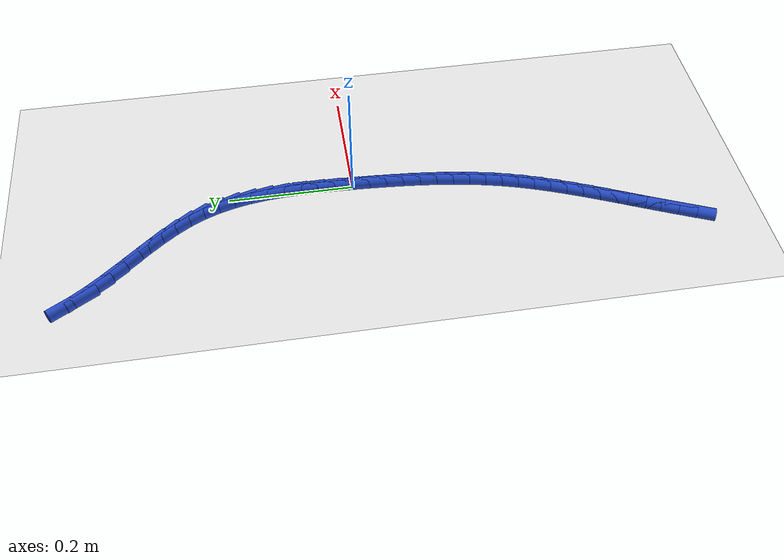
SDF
<sdf version="1.6">
 <world name="default">
  <model name="ground_plane">
   <static>1</static>
   <link name="link">
    <collision name="collision">
     <geometry><plane><normal>0 0 1</normal><size>100 100</size></plane></geometry>
     <surface><friction><ode><mu>100</mu><mu2>50</mu2></ode></friction></surface>
    </collision>
    <visual name="visual">
     <cast_shadows>0</cast_shadows>
     <geometry><plane><normal>0 0 1</normal><size>100 100</size></plane></geometry>
     <material>
      <script><uri>file://media/materials/scripts/gazebo.material</uri><name>Gazebo/WhiteGlow</name></script>
     </material>
    </visual>
   </link>
  </model>
  <model name="line">
   <link name="link_0">
    <pose>1.734723475976807e-18 -3.469446951953614e-17 0.01 0 1.57 1.534499082581251</pose>
    <collision name="collision">
     <geometry><cylinder><radius>0.01</radius><length>0.08</length></cylinder></geometry>
    </collision>
    <visual name="visual">
     <material>
      <script><name>Gazebo/Blue</name><uri>file://media/materials/scripts/gazebo.material</uri></script>
     </material>
     <geometry><cylinder><radius>0.01</radius><length>0.08</length></cylinder></geometry>
    </visual>
   </link>
   <link name="link_1">
    <pose>0.0010244381826505077 0.028211184337771505 0.01 0 1.57 1.5508360316246745</pose>
    <collision name="collision">
     <geometry><cylinder><radius>0.01</radius><length>0.08</length></cylinder></geometry>
    </collision>
    <visual name="visual">
     <material>
      <script><name>Gazebo/Blue</name><uri>file://media/materials/scripts/gazebo.material</uri></script>
     </material>
     <geometry><cylinder><radius>0.01</radius><length>0.08</length></cylinder></geometry>
    </visual>
   </link>
   <link name="link_2">
    <pose>0.0015889900832004194 0.05649117312218792 0.01 0 1.57 -1.5654724552780257</pose>
    <collision name="collision">
     <geometry><cylinder><radius>0.01</radius><length>0.08</length></cylinder></geometry>
    </collision>
    <visual name="visual">
     <material>
      <script><name>Gazebo/Blue</name><uri>file://media/materials/scripts/gazebo.material</uri></script>
     </material>
     <geometry><cylinder><radius>0.01</radius><length>0.08</length></cylinder></geometry>
    </visual>
   </link>
   <link name="link_3">
    <pose>0.0014389059966526364 0.08468168600264829 0.01 0 1.57 -1.530754771913588</pose>
    <collision name="collision">
     <geometry><cylinder><radius>0.01</radius><length>0.08</length></cylinder></geometry>
    </collision>
    <visual name="visual">
     <material>
      <script><name>Gazebo/Blue</name><uri>file://media/materials/scripts/gazebo.material</uri></script>
     </material>
     <geometry><cylinder><radius>0.01</radius><length>0.08</length></cylinder></geometry>
    </visual>
   </link>
   <link name="link_4">
    <pose>0.0003194362180100542 0.11262444262855158 0.01 0 1.57 -1.4858925671162506</pose>
    <collision name="collision">
     <geometry><cylinder><radius>0.01</radius><length>0.08</length></cylinder></geometry>
    </collision>
    <visual name="visual">
     <material>
      <script><name>Gazebo/Blue</name><uri>file://media/materials/scripts/gazebo.material</uri></script>
     </material>
     <geometry><cylinder><radius>0.01</radius><length>0.08</length></cylinder></geometry>
    </visual>
   </link>
   <link name="link_5">
    <pose>-0.00202416895772443 0.14016116264929682 0.01 0 1.57 -1.4300152551584602</pose>
    <collision name="collision">
     <geometry><cylinder><radius>0.01</radius><length>0.08</length></cylinder></geometry>
    </collision>
    <visual name="visual">
     <material>
      <script><name>Gazebo/Blue</name><uri>file://media/materials/scripts/gazebo.material</uri></script>
     </material>
     <geometry><cylinder><radius>0.01</radius><length>0.08</length></cylinder></geometry>
    </visual>
   </link>
   <link name="link_6">
    <pose>-0.005846659235547922 0.167133565714283 0.01 0 1.57 -1.3622114532721696</pose>
    <collision name="collision">
     <geometry><cylinder><radius>0.01</radius><length>0.08</length></cylinder></geometry>
    </collision>
    <visual name="visual">
     <material>
      <script><name>Gazebo/Blue</name><uri>file://media/materials/scripts/gazebo.material</uri></script>
     </material>
     <geometry><cylinder><radius>0.01</radius><length>0.08</length></cylinder></geometry>
    </visual>
   </link>
   <link name="link_7">
    <pose>-0.01140278432045752 0.19338337147290913 0.01 0 1.57 -1.2817341484935918</pose>
    <collision name="collision">
     <geometry><cylinder><radius>0.01</radius><length>0.08</length></cylinder></geometry>
    </collision>
    <visual name="visual">
     <material>
      <script><name>Gazebo/Blue</name><uri>file://media/materials/scripts/gazebo.material</uri></script>
     </material>
     <geometry><cylinder><radius>0.01</radius><length>0.08</length></cylinder></geometry>
    </visual>
   </link>
   <link name="link_8">
    <pose>-0.01894729391745033 0.2187522995745742 0.01 0 1.57 -1.1883166431062484</pose>
    <collision name="collision">
     <geometry><cylinder><radius>0.01</radius><length>0.08</length></cylinder></geometry>
    </collision>
    <visual name="visual">
     <material>
      <script><name>Gazebo/Blue</name><uri>file://media/materials/scripts/gazebo.material</uri></script>
     </material>
     <geometry><cylinder><radius>0.01</radius><length>0.08</length></cylinder></geometry>
    </visual>
   </link>
   <link name="link_9">
    <pose>-0.02873493773152347 0.24308206966867724 0.01 0 1.57 -1.0850132831528254</pose>
    <collision name="collision">
     <geometry><cylinder><radius>0.01</radius><length>0.08</length></cylinder></geometry>
    </collision>
    <visual name="visual">
     <material>
      <script><name>Gazebo/Blue</name><uri>file://media/materials/scripts/gazebo.material</uri></script>
     </material>
     <geometry><cylinder><radius>0.01</radius><length>0.08</length></cylinder></geometry>
    </visual>
   </link>
   <link name="link_10">
    <pose>-0.04096515103989245 0.26624607289294405 0.01 0 1.57 -0.9937251131377034</pose>
    <collision name="collision">
     <geometry><cylinder><radius>0.01</radius><length>0.08</length></cylinder></geometry>
    </collision>
    <visual name="visual">
     <material>
      <script><name>Gazebo/Blue</name><uri>file://media/materials/scripts/gazebo.material</uri></script>
     </material>
     <geometry><cylinder><radius>0.01</radius><length>0.08</length></cylinder></geometry>
    </visual>
   </link>
   <link name="link_11">
    <pose>-0.05537552134493945 0.2883821414540246 0.01 0 1.57 -0.9253450676091585</pose>
    <collision name="collision">
     <geometry><cylinder><radius>0.01</radius><length>0.08</length></cylinder></geometry>
    </collision>
    <visual name="visual">
     <material>
      <script><name>Gazebo/Blue</name><uri>file://media/materials/scripts/gazebo.material</uri></script>
     </material>
     <geometry><cylinder><radius>0.01</radius><length>0.08</length></cylinder></geometry>
    </visual>
   </link>
   <link name="link_12">
    <pose>-0.07147389048696376 0.3097596534742844 0.01 0 1.57 -0.8793216079523238</pose>
    <collision name="collision">
     <geometry><cylinder><radius>0.01</radius><length>0.08</length></cylinder></geometry>
    </collision>
    <visual name="visual">
     <material>
      <script><name>Gazebo/Blue</name><uri>file://media/materials/scripts/gazebo.material</uri></script>
     </material>
     <geometry><cylinder><radius>0.01</radius><length>0.08</length></cylinder></geometry>
    </visual>
   </link>
   <link name="link_13">
    <pose>-0.08876642932128517 0.3306489438351731 0.01 0 1.57 -0.8545641053096079</pose>
    <collision name="collision">
     <geometry><cylinder><radius>0.01</radius><length>0.08</length></cylinder></geometry>
    </collision>
    <visual name="visual">
     <material>
      <script><name>Gazebo/Blue</name><uri>file://media/materials/scripts/gazebo.material</uri></script>
     </material>
     <geometry><cylinder><radius>0.01</radius><length>0.08</length></cylinder></geometry>
    </visual>
   </link>
   <link name="link_14">
    <pose>-0.10675930870322364 0.35132034741814083 0.01 0 1.57 -0.8501648669630004</pose>
    <collision name="collision">
     <geometry><cylinder><radius>0.01</radius><length>0.08</length></cylinder></geometry>
    </collision>
    <visual name="visual">
     <material>
      <script><name>Gazebo/Blue</name><uri>file://media/materials/scripts/gazebo.material</uri></script>
     </material>
     <geometry><cylinder><radius>0.01</radius><length>0.08</length></cylinder></geometry>
    </visual>
   </link>
   <link name="link_15">
    <pose>-0.12495869948809904 0.37204419910463715 0.01 0 1.57 -0.865683779056549</pose>
    <collision name="collision">
     <geometry><cylinder><radius>0.01</radius><length>0.08</length></cylinder></geometry>
    </collision>
    <visual name="visual">
     <material>
      <script><name>Gazebo/Blue</name><uri>file://media/materials/scripts/gazebo.material</uri></script>
     </material>
     <geometry><cylinder><radius>0.01</radius><length>0.08</length></cylinder></geometry>
    </visual>
   </link>
   <link name="link_16">
    <pose>-0.14287077253123137 0.39309083377611204 0.01 0 1.57 -0.9011728520162907</pose>
    <collision name="collision">
     <geometry><cylinder><radius>0.01</radius><length>0.08</length></cylinder></geometry>
    </collision>
    <visual name="visual">
     <material>
      <script><name>Gazebo/Blue</name><uri>file://media/materials/scripts/gazebo.material</uri></script>
     </material>
     <geometry><cylinder><radius>0.01</radius><length>0.08</length></cylinder></geometry>
    </visual>
   </link>
   <link name="link_17">
    <pose>-0.16000169868794042 0.4147305863140152 0.01 0 1.57 -0.9569840891715519</pose>
    <collision name="collision">
     <geometry><cylinder><radius>0.01</radius><length>0.08</length></cylinder></geometry>
    </collision>
    <visual name="visual">
     <material>
      <script><name>Gazebo/Blue</name><uri>file://media/materials/scripts/gazebo.material</uri></script>
     </material>
     <geometry><cylinder><radius>0.01</radius><length>0.08</length></cylinder></geometry>
    </visual>
   </link>
   <link name="link_18">
    <pose>-0.17585764881354612 0.4372337915997964 0.01 0 1.57 -1.033338891163884</pose>
    <collision name="collision">
     <geometry><cylinder><radius>0.01</radius><length>0.08</length></cylinder></geometry>
    </collision>
    <visual name="visual">
     <material>
      <script><name>Gazebo/Blue</name><uri>file://media/materials/scripts/gazebo.material</uri></script>
     </material>
     <geometry><cylinder><radius>0.01</radius><length>0.08</length></cylinder></geometry>
    </visual>
   </link>
   <link name="link_230">
    <pose>-0.14095181906201712 -0.521905841253325 0.01 0 1.57 1.1659996630845366</pose>
    <collision name="collision">
     <geometry><cylinder><radius>0.01</radius><length>0.08</length></cylinder></geometry>
    </collision>
    <visual name="visual">
     <material>
      <script><name>Gazebo/Blue</name><uri>file://media/materials/scripts/gazebo.material</uri></script>
     </material>
     <geometry><cylinder><radius>0.01</radius><length>0.08</length></cylinder></geometry>
    </visual>
   </link>
   <link name="link_231">
    <pose>-0.12963605314643767 -0.4954954492083513 0.01 0 1.57 1.1607775316867712</pose>
    <collision name="collision">
     <geometry><cylinder><radius>0.01</radius><length>0.08</length></cylinder></geometry>
    </collision>
    <visual name="visual">
     <material>
      <script><name>Gazebo/Blue</name><uri>file://media/materials/scripts/gazebo.material</uri></script>
     </material>
     <geometry><cylinder><radius>0.01</radius><length>0.08</length></cylinder></geometry>
    </visual>
   </link>
   <link name="link_232">
    <pose>-0.11830246058117391 -0.46942044635678326 0.01 0 1.57 1.1546213981955562</pose>
    <collision name="collision">
     <geometry><cylinder><radius>0.01</radius><length>0.08</length></cylinder></geometry>
    </collision>
    <visual name="visual">
     <material>
      <script><name>Gazebo/Blue</name><uri>file://media/materials/scripts/gazebo.material</uri></script>
     </material>
     <geometry><cylinder><radius>0.01</radius><length>0.08</length></cylinder></geometry>
    </visual>
   </link>
   <link name="link_233">
    <pose>-0.10694969467624851 -0.4437350170788959 0.01 0 1.57 1.1532375370401806</pose>
    <collision name="collision">
     <geometry><cylinder><radius>0.01</radius><length>0.08</length></cylinder></geometry>
    </collision>
    <visual name="visual">
     <material>
      <script><name>Gazebo/Blue</name><uri>file://media/materials/scripts/gazebo.material</uri></script>
     </material>
     <geometry><cylinder><radius>0.01</radius><length>0.08</length></cylinder></geometry>
    </visual>
   </link>
   <link name="link_234">
    <pose>-0.09569347996005119 -0.41836304887722414 0.01 0 1.57 1.157082797682023</pose>
    <collision name="collision">
     <geometry><cylinder><radius>0.01</radius><length>0.08</length></cylinder></geometry>
    </collision>
    <visual name="visual">
     <material>
      <script><name>Gazebo/Blue</name><uri>file://media/materials/scripts/gazebo.material</uri></script>
     </material>
     <geometry><cylinder><radius>0.01</radius><length>0.08</length></cylinder></geometry>
    </visual>
   </link>
   <link name="link_235">
    <pose>-0.08465525012607023 -0.3932220751187842 0.01 0 1.57 1.1663182652045259</pose>
    <collision name="collision">
     <geometry><cylinder><radius>0.01</radius><length>0.08</length></cylinder></geometry>
    </collision>
    <visual name="visual">
     <material>
      <script><name>Gazebo/Blue</name><uri>file://media/materials/scripts/gazebo.material</uri></script>
     </material>
     <geometry><cylinder><radius>0.01</radius><length>0.08</length></cylinder></geometry>
    </visual>
   </link>
   <link name="link_236">
    <pose>-0.07395643886779396 -0.3682296291705921 0.01 0 1.57 1.1810761983672058</pose>
    <collision name="collision">
     <geometry><cylinder><radius>0.01</radius><length>0.08</length></cylinder></geometry>
    </collision>
    <visual name="visual">
     <material>
      <script><name>Gazebo/Blue</name><uri>file://media/materials/scripts/gazebo.material</uri></script>
     </material>
     <geometry><cylinder><radius>0.01</radius><length>0.08</length></cylinder></geometry>
    </visual>
   </link>
   <link name="link_237">
    <pose>-0.0637184798787107 -0.3433032443996637 0.01 0 1.57 1.2014487436075498</pose>
    <collision name="collision">
     <geometry><cylinder><radius>0.01</radius><length>0.08</length></cylinder></geometry>
    </collision>
    <visual name="visual">
     <material>
      <script><name>Gazebo/Blue</name><uri>file://media/materials/scripts/gazebo.material</uri></script>
     </material>
     <geometry><cylinder><radius>0.01</radius><length>0.08</length></cylinder></geometry>
    </visual>
   </link>
   <link name="link_238">
    <pose>-0.05406280685230873 -0.3183604541730154 0.01 0 1.57 1.2274712919041453</pose>
    <collision name="collision">
     <geometry><cylinder><radius>0.01</radius><length>0.08</length></cylinder></geometry>
    </collision>
    <visual name="visual">
     <material>
      <script><name>Gazebo/Blue</name><uri>file://media/materials/scripts/gazebo.material</uri></script>
     </material>
     <geometry><cylinder><radius>0.01</radius><length>0.08</length></cylinder></geometry>
    </visual>
   </link>
   <link name="link_239">
    <pose>-0.04511085348207636 -0.2933187918576632 0.01 0 1.57 1.259100841348535</pose>
    <collision name="collision">
     <geometry><cylinder><radius>0.01</radius><length>0.08</length></cylinder></geometry>
    </collision>
    <visual name="visual">
     <material>
      <script><name>Gazebo/Blue</name><uri>file://media/materials/scripts/gazebo.material</uri></script>
     </material>
     <geometry><cylinder><radius>0.01</radius><length>0.08</length></cylinder></geometry>
    </visual>
   </link>
   <link name="link_240">
    <pose>-0.03698405346150211 -0.2680957908206238 0.01 0 1.57 1.2961715297959497</pose>
    <collision name="collision">
     <geometry><cylinder><radius>0.01</radius><length>0.08</length></cylinder></geometry>
    </collision>
    <visual name="visual">
     <material>
      <script><name>Gazebo/Blue</name><uri>file://media/materials/scripts/gazebo.material</uri></script>
     </material>
     <geometry><cylinder><radius>0.01</radius><length>0.08</length></cylinder></geometry>
    </visual>
   </link>
   <link name="link_241">
    <pose>-0.029803367873882297 -0.24260919258048366 0.01 0 1.57 1.335776531886138</pose>
    <collision name="collision">
     <geometry><cylinder><radius>0.01</radius><length>0.08</length></cylinder></geometry>
    </collision>
    <visual name="visual">
     <material>
      <script><name>Gazebo/Blue</name><uri>file://media/materials/scripts/gazebo.material</uri></script>
     </material>
     <geometry><cylinder><radius>0.01</radius><length>0.08</length></cylinder></geometry>
    </visual>
   </link>
   <link name="link_242">
    <pose>-0.023624778079356576 -0.21680535765677184 0.01 0 1.57 1.3723810652475166</pose>
    <collision name="collision">
     <geometry><cylinder><radius>0.01</radius><length>0.08</length></cylinder></geometry>
    </collision>
    <visual name="visual">
     <material>
      <script><name>Gazebo/Blue</name><uri>file://media/materials/scripts/gazebo.material</uri></script>
     </material>
     <geometry><cylinder><radius>0.01</radius><length>0.08</length></cylinder></geometry>
    </visual>
   </link>
   <link name="link_243">
    <pose>-0.018373639509037233 -0.1906881781096877 0.01 0 1.57 1.4052541220281531</pose>
    <collision name="collision">
     <geometry><cylinder><radius>0.01</radius><length>0.08</length></cylinder></geometry>
    </collision>
    <visual name="visual">
     <material>
      <script><name>Gazebo/Blue</name><uri>file://media/materials/scripts/gazebo.material</uri></script>
     </material>
     <geometry><cylinder><radius>0.01</radius><length>0.08</length></cylinder></geometry>
    </visual>
   </link>
   <link name="link_244">
    <pose>-0.013959662832036401 -0.16426843641749697 0.01 0 1.57 1.434363706824088</pose>
    <collision name="collision">
     <geometry><cylinder><radius>0.01</radius><length>0.08</length></cylinder></geometry>
    </collision>
    <visual name="visual">
     <material>
      <script><name>Gazebo/Blue</name><uri>file://media/materials/scripts/gazebo.material</uri></script>
     </material>
     <geometry><cylinder><radius>0.01</radius><length>0.08</length></cylinder></geometry>
    </visual>
   </link>
   <link name="link_245">
    <pose>-0.01029255871746622 -0.13755691505846546 0.01 0 1.57 1.4597236869437364</pose>
    <collision name="collision">
     <geometry><cylinder><radius>0.01</radius><length>0.08</length></cylinder></geometry>
    </collision>
    <visual name="visual">
     <material>
      <script><name>Gazebo/Blue</name><uri>file://media/materials/scripts/gazebo.material</uri></script>
     </material>
     <geometry><cylinder><radius>0.01</radius><length>0.08</length></cylinder></geometry>
    </visual>
   </link>
   <link name="link_246">
    <pose>-0.00728203783443883 -0.11056439651085903 0.01 0 1.57 1.4813808775111785</pose>
    <collision name="collision">
     <geometry><cylinder><radius>0.01</radius><length>0.08</length></cylinder></geometry>
    </collision>
    <visual name="visual">
     <material>
      <script><name>Gazebo/Blue</name><uri>file://media/materials/scripts/gazebo.material</uri></script>
     </material>
     <geometry><cylinder><radius>0.01</radius><length>0.08</length></cylinder></geometry>
    </visual>
   </link>
   <link name="link_247">
    <pose>-0.004837810852066377 -0.0833016632529435 0.01 0 1.57 1.4994037855514608</pose>
    <collision name="collision">
     <geometry><cylinder><radius>0.01</radius><length>0.08</length></cylinder></geometry>
    </collision>
    <visual name="visual">
     <material>
      <script><name>Gazebo/Blue</name><uri>file://media/materials/scripts/gazebo.material</uri></script>
     </material>
     <geometry><cylinder><radius>0.01</radius><length>0.08</length></cylinder></geometry>
    </visual>
   </link>
   <link name="link_248">
    <pose>-0.0028695884394609925 -0.055779497762984596 0.01 0 1.57 1.513873346187264</pose>
    <collision name="collision">
     <geometry><cylinder><radius>0.01</radius><length>0.08</length></cylinder></geometry>
    </collision>
    <visual name="visual">
     <material>
      <script><name>Gazebo/Blue</name><uri>file://media/materials/scripts/gazebo.material</uri></script>
     </material>
     <geometry><cylinder><radius>0.01</radius><length>0.08</length></cylinder></geometry>
    </visual>
   </link>
   <link name="link_249">
    <pose>-0.0012870812657348198 -0.028008682519248186 0.01 0 1.57 1.5248756932108924</pose>
    <collision name="collision">
     <geometry><cylinder><radius>0.01</radius><length>0.08</length></cylinder></geometry>
    </collision>
    <visual name="visual">
     <material>
      <script><name>Gazebo/Blue</name><uri>file://media/materials/scripts/gazebo.material</uri></script>
     </material>
     <geometry><cylinder><radius>0.01</radius><length>0.08</length></cylinder></geometry>
    </visual>
   </link>
   <link name="link_250">
    <pose>2.6020852139652106e-18 -4.163336342344337e-17 0.01 0 1.57 1.5324968321345</pose>
    <collision name="collision">
     <geometry><cylinder><radius>0.01</radius><length>0.08</length></cylinder></geometry>
    </collision>
    <visual name="visual">
     <material>
      <script><name>Gazebo/Blue</name><uri>file://media/materials/scripts/gazebo.material</uri></script>
     </material>
     <geometry><cylinder><radius>0.01</radius><length>0.08</length></cylinder></geometry>
    </visual>
   </link>
   <link name="link_251">
    <pose>0.0010819446886313358 0.028235767316494013 0.01 0 1.57 1.5368190004304354</pose>
    <collision name="collision">
     <geometry><cylinder><radius>0.01</radius><length>0.08</length></cylinder></geometry>
    </collision>
    <visual name="visual">
     <material>
      <script><name>Gazebo/Blue</name><uri>file://media/materials/scripts/gazebo.material</uri></script>
     </material>
     <geometry><cylinder><radius>0.01</radius><length>0.08</length></cylinder></geometry>
    </visual>
   </link>
   <link name="link_252">
    <pose>0.00204904213104704 0.05668783695196819 0.01 0 1.57 1.534665993440116</pose>
    <collision name="collision">
     <geometry><cylinder><radius>0.01</radius><length>0.08</length></cylinder></geometry>
    </collision>
    <visual name="visual">
     <material>
      <script><name>Gazebo/Blue</name><uri>file://media/materials/scripts/gazebo.material</uri></script>
     </material>
     <geometry><cylinder><radius>0.01</radius><length>0.08</length></cylinder></geometry>
    </visual>
   </link>
  </model>
 </world>
</sdf>
